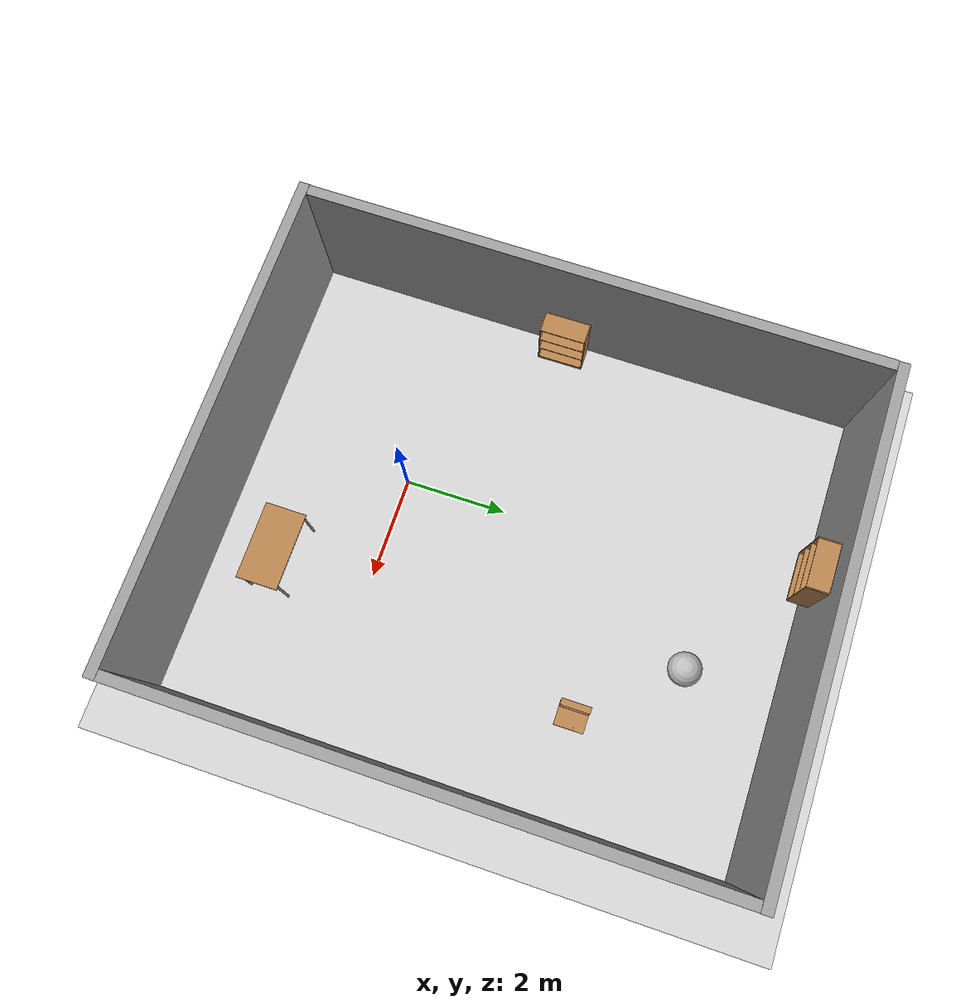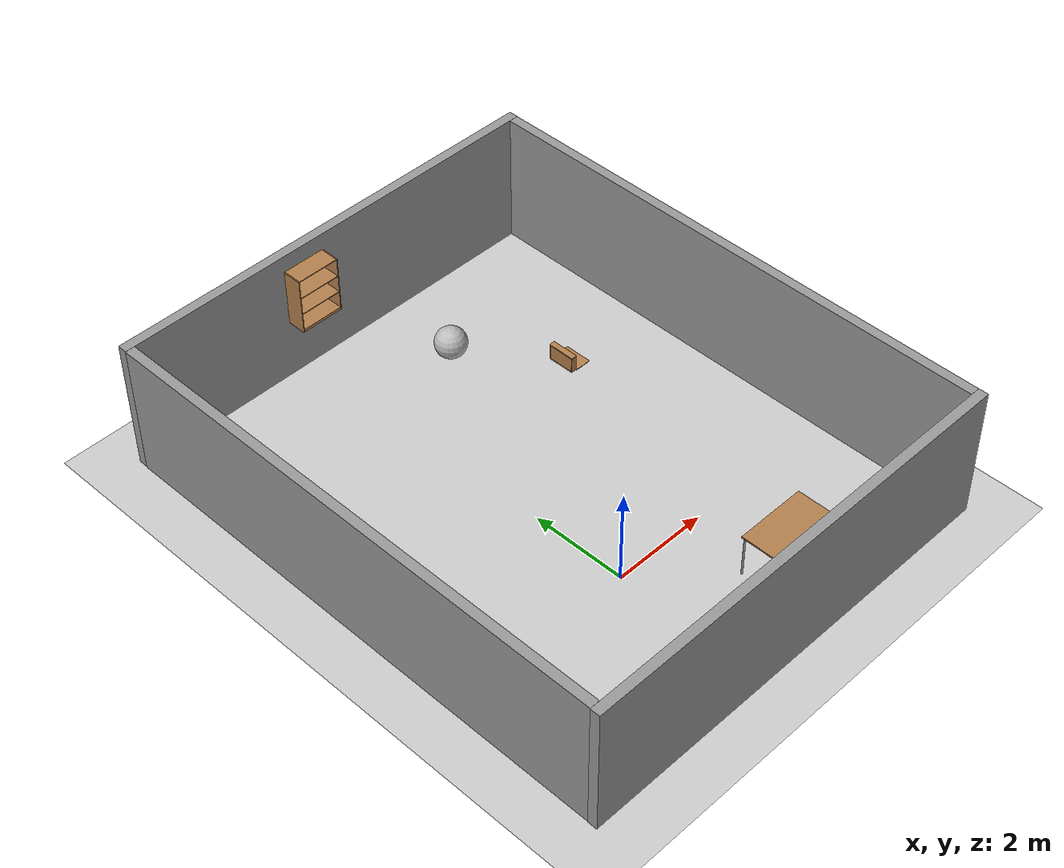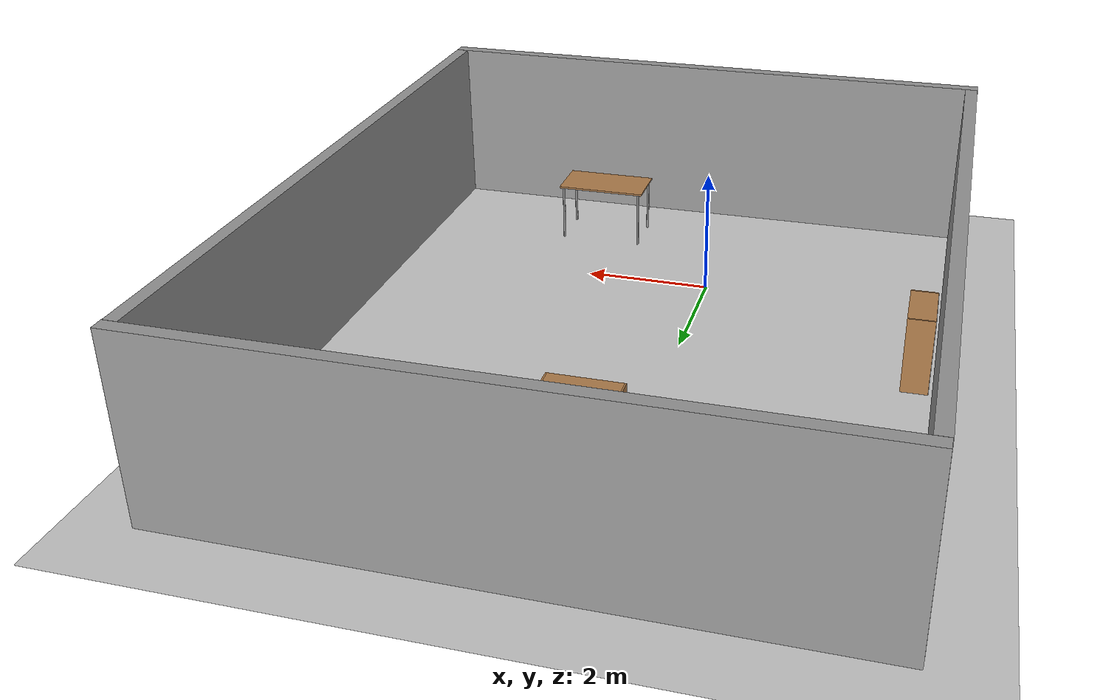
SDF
<sdf version="1.6">
 <world name="default">
  <light name="sun" type="directional">
   <pose>0 0 15 0 -0 0</pose>
   <diffuse>0.8 0.8 0.8 1</diffuse>
   <specular>0.2 0.2 0.2 1</specular>
   <attenuation>
    <range>1000</range>
    <constant>0.9</constant>
    <linear>0.01</linear>
    <quadratic>0.001</quadratic>
   </attenuation>
   <direction>-0.5 0.1 -0.9</direction>
  </light>
  <model name="ground_plane">
   <static>1</static>
   <link name="link">
    <collision name="collision">
     <geometry><plane><normal>0 0 1</normal><size>100 100</size></plane></geometry>
     <surface><friction><ode><mu>100</mu><mu2>50</mu2></ode></friction></surface>
    </collision>
    <visual name="visual">
     <transparency>1</transparency>
     <cast_shadows>0</cast_shadows>
     <geometry><plane><normal>0 0 1</normal><size>100 100</size></plane></geometry>
     <material>
      <script><uri>file://media/materials/scripts/gazebo.material</uri><name>Gazebo/Grey</name></script>
     </material>
    </visual>
   </link>
  </model>
  <gravity>0 0 -9.8</gravity>
  <magnetic_field>6e-06 2.3e-05 -4.2e-05</magnetic_field>
  <atmosphere type="adiabatic"/>
  <physics name="default_physics" default="0" type="ode">
   <max_step_size>0.001</max_step_size>
   <real_time_factor>1</real_time_factor>
   <real_time_update_rate>1000</real_time_update_rate>
  </physics>
  <scene><ambient>0.4 0.4 0.4 1</ambient><background>0.7 0.7 0.7 1</background><shadows>1</shadows></scene>
  <spherical_coordinates>
   <surface_model>EARTH_WGS84</surface_model>
   <latitude_deg>0</latitude_deg>
   <longitude_deg>0</longitude_deg>
   <elevation>0</elevation>
   <heading_deg>0</heading_deg>
  </spherical_coordinates>
  <model name="wooden_case">
   <link name="base">
    <pose>0 0 0.024 0 -0 0</pose>
    <inertial>
     <pose>-0.022184 0 0.171592 0 -0 0</pose>
     <mass>3.96264</mass>
     <inertia>
      <ixx>0.213536</ixx>
      <ixy>0</ixy>
      <ixz>0.000779377</ixz>
      <iyy>0.0708943</iyy>
      <iyz>0</iyz>
      <izz>0.154604</izz>
     </inertia>
    </inertial>
    <collision name="collision_back">
     <pose>-0.053975 0 0.1778 0 -0 0</pose>
     <geometry><box><size>0.01905 0.5461 0.3175</size></box></geometry>
     <surface>
      <contact>
       <poissons_ratio>0.347</poissons_ratio>
       <elastic_modulus>8.8e+09</elastic_modulus>
       <ode><kp>100000</kp><kd>100</kd><max_vel>100</max_vel><min_depth>0.001</min_depth></ode>
      </contact>
      <friction>
       <torsional>
        <coefficient>1</coefficient>
        <use_patch_radius>0</use_patch_radius>
        <surface_radius>0.01</surface_radius>
       </torsional>
      </friction>
     </surface>
    </collision>
    <visual name="visual_back">
     <pose>-0.053975 0 0.1778 0 -0 0</pose>
     <geometry><box><size>0.01905 0.5461 0.3175</size></box></geometry>
     <material>
      <script><uri>file://media/materials/scripts/gazebo.material</uri><name>Gazebo/Wood</name></script>
     </material>
    </visual>
    <collision name="collision_bottom">
     <pose>0 0 0.009525 0 -0 0</pose>
     <geometry><box><size>0.127 0.5842 0.01905</size></box></geometry>
     <surface>
      <contact>
       <poissons_ratio>0.347</poissons_ratio>
       <elastic_modulus>8.8e+09</elastic_modulus>
       <ode><kp>100000</kp><kd>100</kd><max_vel>100</max_vel><min_depth>0.001</min_depth></ode>
      </contact>
      <friction>
       <torsional>
        <coefficient>1</coefficient>
        <use_patch_radius>0</use_patch_radius>
        <surface_radius>0.01</surface_radius>
       </torsional>
      </friction>
     </surface>
    </collision>
    <visual name="visual_bottom">
     <pose>0 0 0.009525 0 -0 0</pose>
     <geometry><box><size>0.127 0.5842 0.01905</size></box></geometry>
     <material>
      <script><uri>file://media/materials/scripts/gazebo.material</uri><name>Gazebo/Wood</name></script>
     </material>
    </visual>
    <collision name="collision_top">
     <pose>0 0 0.346075 0 -0 0</pose>
     <geometry><box><size>0.127 0.5842 0.01905</size></box></geometry>
     <surface>
      <contact>
       <poissons_ratio>0.347</poissons_ratio>
       <elastic_modulus>8.8e+09</elastic_modulus>
       <ode><kp>100000</kp><kd>100</kd><max_vel>100</max_vel><min_depth>0.001</min_depth></ode>
      </contact>
      <friction>
       <torsional>
        <coefficient>1</coefficient>
        <use_patch_radius>0</use_patch_radius>
        <surface_radius>0.01</surface_radius>
       </torsional>
      </friction>
     </surface>
    </collision>
    <visual name="visual_top">
     <pose>0 0 0.346075 0 -0 0</pose>
     <geometry><box><size>0.127 0.5842 0.01905</size></box></geometry>
     <material>
      <script><uri>file://media/materials/scripts/gazebo.material</uri><name>Gazebo/Wood</name></script>
     </material>
    </visual>
    <collision name="collision_left">
     <pose>0 -0.282575 0.1778 0 -0 0</pose>
     <geometry><box><size>0.127 0.01905 0.3175</size></box></geometry>
     <surface>
      <contact>
       <poissons_ratio>0.347</poissons_ratio>
       <elastic_modulus>8.8e+09</elastic_modulus>
       <ode><kp>100000</kp><kd>100</kd><max_vel>100</max_vel><min_depth>0.001</min_depth></ode>
      </contact>
      <friction>
       <torsional>
        <coefficient>1</coefficient>
        <use_patch_radius>0</use_patch_radius>
        <surface_radius>0.01</surface_radius>
       </torsional>
      </friction>
     </surface>
    </collision>
    <visual name="visual_left">
     <pose>0 -0.282575 0.1778 0 -0 0</pose>
     <geometry><box><size>0.127 0.01905 0.3175</size></box></geometry>
     <material>
      <script><uri>file://media/materials/scripts/gazebo.material</uri><name>Gazebo/Wood</name></script>
     </material>
    </visual>
    <collision name="collision_right">
     <pose>0 0.282575 0.1778 0 -0 0</pose>
     <geometry><box><size>0.127 0.01905 0.3175</size></box></geometry>
     <surface>
      <contact>
       <poissons_ratio>0.347</poissons_ratio>
       <elastic_modulus>8.8e+09</elastic_modulus>
       <ode><kp>100000</kp><kd>100</kd><max_vel>100</max_vel><min_depth>0.001</min_depth></ode>
      </contact>
      <friction>
       <torsional>
        <coefficient>1</coefficient>
        <use_patch_radius>0</use_patch_radius>
        <surface_radius>0.01</surface_radius>
       </torsional>
      </friction>
     </surface>
    </collision>
    <visual name="visual_right">
     <pose>0 0.282575 0.1778 0 -0 0</pose>
     <geometry><box><size>0.127 0.01905 0.3175</size></box></geometry>
     <material>
      <script><uri>file://media/materials/scripts/gazebo.material</uri><name>Gazebo/Wood</name></script>
     </material>
    </visual>
    <collision name="collision_block_left">
     <pose>0.0095 -0.2151 -0.012 0 -0 0</pose>
     <geometry><box><size>0.108 0.05 0.024</size></box></geometry>
     <surface>
      <contact>
       <poissons_ratio>0.347</poissons_ratio>
       <elastic_modulus>8.8e+09</elastic_modulus>
       <ode><kp>100000</kp><kd>100</kd><max_vel>100</max_vel><min_depth>0.001</min_depth></ode>
      </contact>
      <friction>
       <torsional>
        <coefficient>1</coefficient>
        <use_patch_radius>0</use_patch_radius>
        <surface_radius>0.01</surface_radius>
       </torsional>
      </friction>
     </surface>
    </collision>
    <visual name="visual_block_left">
     <pose>0.0095 -0.2151 -0.012 0 -0 0</pose>
     <geometry><box><size>0.108 0.05 0.024</size></box></geometry>
     <material>
      <script><uri>file://media/materials/scripts/gazebo.material</uri><name>Gazebo/Wood</name></script>
     </material>
    </visual>
    <collision name="collision_block_right">
     <pose>0.0095 0.2151 -0.012 0 -0 0</pose>
     <geometry><box><size>0.108 0.05 0.024</size></box></geometry>
     <surface>
      <contact>
       <poissons_ratio>0.347</poissons_ratio>
       <elastic_modulus>8.8e+09</elastic_modulus>
       <ode><kp>100000</kp><kd>100</kd><max_vel>100</max_vel><min_depth>0.001</min_depth></ode>
      </contact>
      <friction>
       <torsional>
        <coefficient>1</coefficient>
        <use_patch_radius>0</use_patch_radius>
        <surface_radius>0.01</surface_radius>
       </torsional>
      </friction>
     </surface>
    </collision>
    <visual name="visual_block_right">
     <pose>0.0095 0.2151 -0.012 0 -0 0</pose>
     <geometry><box><size>0.108 0.05 0.024</size></box></geometry>
     <material>
      <script><uri>file://media/materials/scripts/gazebo.material</uri><name>Gazebo/Wood</name></script>
     </material>
    </visual>
   </link>
   <link name="lid">
    <pose>0.243775 0 0.009525 0 -0 0</pose>
    <inertial>
     <mass>1.97874</mass>
     <inertia>
      <ixx>0.0563367</ixx>
      <ixy>0</ixy>
      <ixz>0</ixz>
      <iyy>0.020911</iyy>
      <iyz>0</iyz>
      <izz>0.0771281</izz>
     </inertia>
    </inertial>
    <collision name="collision">
     <geometry><box><size>0.3556 0.5842 0.01905</size></box></geometry>
     <surface>
      <contact>
       <poissons_ratio>0.347</poissons_ratio>
       <elastic_modulus>8.8e+09</elastic_modulus>
       <ode><kp>100000</kp><kd>100</kd><max_vel>100</max_vel><min_depth>0.001</min_depth></ode>
      </contact>
      <friction>
       <torsional>
        <coefficient>1</coefficient>
        <use_patch_radius>0</use_patch_radius>
        <surface_radius>0.01</surface_radius>
       </torsional>
      </friction>
     </surface>
    </collision>
    <visual name="visual">
     <geometry><box><size>0.3556 0.5842 0.01905</size></box></geometry>
     <material>
      <script><uri>file://media/materials/scripts/gazebo.material</uri><name>Gazebo/Wood</name></script>
     </material>
    </visual>
    <visual name="tee_nut_1">
     <pose>0.122 -0.216 0 0 -0 0</pose>
     <geometry><cylinder><radius>0.00635</radius><length>0.0192405</length></cylinder></geometry>
     <material>
      <script><uri>file://media/materials/scripts/gazebo.material</uri><name>Gazebo/Grey</name></script>
     </material>
    </visual>
    <visual name="tee_nut_2">
     <pose>0.122 -0.088 0 0 -0 0</pose>
     <geometry><cylinder><radius>0.00635</radius><length>0.0192405</length></cylinder></geometry>
     <material>
      <script><uri>file://media/materials/scripts/gazebo.material</uri><name>Gazebo/Grey</name></script>
     </material>
    </visual>
    <visual name="tee_nut_3">
     <pose>0.122 0.088 0 0 -0 0</pose>
     <geometry><cylinder><radius>0.00635</radius><length>0.0192405</length></cylinder></geometry>
     <material>
      <script><uri>file://media/materials/scripts/gazebo.material</uri><name>Gazebo/Grey</name></script>
     </material>
    </visual>
    <visual name="tee_nut_4">
     <pose>0.122 0.216 0 0 -0 0</pose>
     <geometry><cylinder><radius>0.00635</radius><length>0.0192405</length></cylinder></geometry>
     <material>
      <script><uri>file://media/materials/scripts/gazebo.material</uri><name>Gazebo/Grey</name></script>
     </material>
    </visual>
   </link>
   <joint name="lid_hinge" type="revolute">
    <pose>-0.1778 0 0.01905 0 -0 0</pose>
    <parent>base</parent>
    <child>lid</child>
    <axis>
     <xyz>0 1 0</xyz>
     <limit><upper>0.523599</upper><lower>-1.5708</lower></limit>
     <use_parent_model_frame>0</use_parent_model_frame>
     <dynamics><spring_reference>0</spring_reference><spring_stiffness>0</spring_stiffness></dynamics>
    </axis>
   </joint>
   <pose>3.18311 4.46322 -0.001057 0 -0.000428 -1e-06</pose>
  </model>
  <model name="table">
   <static>1</static>
   <link name="link">
    <collision name="surface">
     <pose>0 0 1 0 -0 0</pose>
     <geometry><box><size>1.5 0.8 0.03</size></box></geometry>
     <surface><friction><ode><mu>0.6</mu><mu2>0.6</mu2></ode></friction></surface>
    </collision>
    <visual name="visual1">
     <pose>0 0 1 0 -0 0</pose>
     <geometry><box><size>1.5 0.8 0.03</size></box></geometry>
     <material>
      <script><uri>file://media/materials/scripts/gazebo.material</uri><name>Gazebo/Wood</name></script>
     </material>
    </visual>
    <collision name="front_left_leg">
     <pose>0.68 0.38 0.5 0 -0 0</pose>
     <geometry><cylinder><radius>0.02</radius><length>1</length></cylinder></geometry>
    </collision>
    <visual name="front_left_leg">
     <pose>0.68 0.38 0.5 0 -0 0</pose>
     <geometry><cylinder><radius>0.02</radius><length>1</length></cylinder></geometry>
     <material>
      <script><uri>file://media/materials/scripts/gazebo.material</uri><name>Gazebo/Grey</name></script>
     </material>
    </visual>
    <collision name="front_right_leg">
     <pose>0.68 -0.38 0.5 0 -0 0</pose>
     <geometry><cylinder><radius>0.02</radius><length>1</length></cylinder></geometry>
    </collision>
    <visual name="front_right_leg">
     <pose>0.68 -0.38 0.5 0 -0 0</pose>
     <geometry><cylinder><radius>0.02</radius><length>1</length></cylinder></geometry>
     <material>
      <script><uri>file://media/materials/scripts/gazebo.material</uri><name>Gazebo/Grey</name></script>
     </material>
    </visual>
    <collision name="back_right_leg">
     <pose>-0.68 -0.38 0.5 0 -0 0</pose>
     <geometry><cylinder><radius>0.02</radius><length>1</length></cylinder></geometry>
    </collision>
    <visual name="back_right_leg">
     <pose>-0.68 -0.38 0.5 0 -0 0</pose>
     <geometry><cylinder><radius>0.02</radius><length>1</length></cylinder></geometry>
     <material>
      <script><uri>file://media/materials/scripts/gazebo.material</uri><name>Gazebo/Grey</name></script>
     </material>
    </visual>
    <collision name="back_left_leg">
     <pose>-0.68 0.38 0.5 0 -0 0</pose>
     <geometry><cylinder><radius>0.02</radius><length>1</length></cylinder></geometry>
    </collision>
    <visual name="back_left_leg">
     <pose>-0.68 0.38 0.5 0 -0 0</pose>
     <geometry><cylinder><radius>0.02</radius><length>1</length></cylinder></geometry>
     <material>
      <script><uri>file://media/materials/scripts/gazebo.material</uri><name>Gazebo/Grey</name></script>
     </material>
    </visual>
   </link>
   <pose>2.21738 -1.78715 -0.059085 0 -0 0</pose>
  </model>
  <model name="bookshelf">
   <static>1</static>
   <link name="link">
    <inertial><mass>1</mass></inertial>
    <collision name="back">
     <pose>0 0.005 0.6 0 -0 0</pose>
     <geometry><box><size>0.9 0.01 1.2</size></box></geometry>
    </collision>
    <visual name="visual1">
     <pose>0 0.005 0.6 0 -0 0</pose>
     <geometry><box><size>0.9 0.01 1.2</size></box></geometry>
     <material>
      <script><uri>file://media/materials/scripts/gazebo.material</uri><name>Gazebo/Wood</name></script>
     </material>
    </visual>
    <collision name="left_side">
     <pose>0.45 -0.195 0.6 0 -0 0</pose>
     <geometry><box><size>0.02 0.4 1.2</size></box></geometry>
    </collision>
    <visual name="visual2">
     <pose>0.45 -0.195 0.6 0 -0 0</pose>
     <geometry><box><size>0.02 0.4 1.2</size></box></geometry>
     <material>
      <script><uri>file://media/materials/scripts/gazebo.material</uri><name>Gazebo/Wood</name></script>
     </material>
    </visual>
    <collision name="right_side">
     <pose>-0.45 -0.195 0.6 0 -0 0</pose>
     <geometry><box><size>0.02 0.4 1.2</size></box></geometry>
    </collision>
    <visual name="visual3">
     <pose>-0.45 -0.195 0.6 0 -0 0</pose>
     <geometry><box><size>0.02 0.4 1.2</size></box></geometry>
     <material>
      <script><uri>file://media/materials/scripts/gazebo.material</uri><name>Gazebo/Wood</name></script>
     </material>
    </visual>
    <collision name="bottom">
     <pose>0 -0.195 0.03 0 -0 0</pose>
     <geometry><box><size>0.88 0.4 0.06</size></box></geometry>
    </collision>
    <visual name="visual4">
     <pose>0 -0.195 0.03 0 -0 0</pose>
     <geometry><box><size>0.88 0.4 0.06</size></box></geometry>
     <material>
      <script><uri>file://media/materials/scripts/gazebo.material</uri><name>Gazebo/Wood</name></script>
     </material>
    </visual>
    <collision name="top">
     <pose>0 -0.195 1.19 0 -0 0</pose>
     <geometry><box><size>0.88 0.4 0.02</size></box></geometry>
    </collision>
    <visual name="visual5">
     <pose>0 -0.195 1.19 0 -0 0</pose>
     <geometry><box><size>0.88 0.4 0.02</size></box></geometry>
     <material>
      <script><uri>file://media/materials/scripts/gazebo.material</uri><name>Gazebo/Wood</name></script>
     </material>
    </visual>
    <collision name="low_shelf">
     <pose>0 -0.195 0.43 0 -0 0</pose>
     <geometry><box><size>0.88 0.4 0.02</size></box></geometry>
    </collision>
    <visual name="visual6">
     <pose>0 -0.195 0.43 0 -0 0</pose>
     <geometry><box><size>0.88 0.4 0.02</size></box></geometry>
     <material>
      <script><uri>file://media/materials/scripts/gazebo.material</uri><name>Gazebo/Wood</name></script>
     </material>
    </visual>
    <collision name="high_shelf">
     <pose>0 -0.195 0.8 0 -0 0</pose>
     <geometry><box><size>0.88 0.4 0.02</size></box></geometry>
    </collision>
    <visual name="visual7">
     <pose>0 -0.195 0.8 0 -0 0</pose>
     <geometry><box><size>0.88 0.4 0.02</size></box></geometry>
     <material>
      <script><uri>file://media/materials/scripts/gazebo.material</uri><name>Gazebo/Wood</name></script>
     </material>
    </visual>
   </link>
   <pose>-0.128106 7.81472 1.37877 0 -0 0</pose>
  </model>
  <model name="grey_wall_1_0">
   <link name="link">
    <pose>0 0 1.4 0 -0 0</pose>
    <inertial>
     <mass>1</mass>
     <inertia><ixx>1</ixx><ixy>0</ixy><ixz>0</ixz><iyy>1</iyy><iyz>0</iyz><izz>1</izz></inertia>
    </inertial>
    <visual name="visual">
     <cast_shadows>0</cast_shadows>
     <geometry><box><size>9.5 0.2 2.8</size></box></geometry>
     <material>
      <script>
       <uri>model://grey_wall/materials/scripts</uri>
       <uri>model://grey_wall/materials/textures</uri>
       <name>vrc/grey_wall</name>
      </script>
      <ambient>1 1 1 1</ambient>
      <diffuse>1 1 1 1</diffuse>
      <specular>0 0 0 1</specular>
      <emissive>0 0 0 1</emissive>
      <shader type="vertex"><normal_map>__default__</normal_map></shader>
     </material>
    </visual>
    <collision name="collision">
     <geometry><box><size>9.5 0.2 2.8</size></box></geometry>
     <surface>
      <friction>
       <ode><mu>1</mu><mu2>1</mu2><fdir1>0 0 0</fdir1><slip1>0</slip1><slip2>0</slip2></ode>
       <torsional>
        <coefficient>1</coefficient>
        <patch_radius>0</patch_radius>
        <surface_radius>0</surface_radius>
        <use_patch_radius>1</use_patch_radius>
        <ode><slip>0</slip></ode>
       </torsional>
      </friction>
      <bounce><restitution_coefficient>0</restitution_coefficient><threshold>1e+06</threshold></bounce>
      <contact>
       <collide_without_contact>0</collide_without_contact>
       <collide_without_contact_bitmask>1</collide_without_contact_bitmask>
       <collide_bitmask>1</collide_bitmask>
       <ode>
        <soft_cfm>0</soft_cfm>
        <soft_erp>0.2</soft_erp>
        <kp>1e+13</kp>
        <kd>1</kd>
        <max_vel>0.01</max_vel>
        <min_depth>0</min_depth>
       </ode>
       <bullet>
        <split_impulse>1</split_impulse>
        <split_impulse_penetration_threshold>-0.01</split_impulse_penetration_threshold>
        <soft_cfm>0</soft_cfm>
        <soft_erp>0.2</soft_erp>
        <kp>1e+13</kp>
        <kd>1</kd>
       </bullet>
      </contact>
     </surface>
    </collision>
   </link>
   <static>1</static>
   <pose>0.733299 8.04251 0 0 -0 0</pose>
  </model>
  <model name="grey_wall_2">
   <link name="link">
    <pose>0 0 1.4 0 -0 0</pose>
    <inertial>
     <mass>1</mass>
     <inertia><ixx>1</ixx><ixy>0</ixy><ixz>0</ixz><iyy>1</iyy><iyz>0</iyz><izz>1</izz></inertia>
    </inertial>
    <visual name="visual">
     <cast_shadows>0</cast_shadows>
     <geometry><box><size>11 0.2 2.8</size></box></geometry>
     <material>
      <script>
       <uri>model://grey_wall/materials/scripts</uri>
       <uri>model://grey_wall/materials/textures</uri>
       <name>vrc/grey_wall</name>
      </script>
      <ambient>1 1 1 1</ambient>
      <diffuse>1 1 1 1</diffuse>
      <specular>0 0 0 1</specular>
      <emissive>0 0 0 1</emissive>
      <shader type="vertex"><normal_map>__default__</normal_map></shader>
     </material>
    </visual>
    <collision name="collision">
     <geometry><box><size>11 0.2 2.8</size></box></geometry>
     <surface>
      <friction>
       <ode><mu>1</mu><mu2>1</mu2><fdir1>0 0 0</fdir1><slip1>0</slip1><slip2>0</slip2></ode>
       <torsional>
        <coefficient>1</coefficient>
        <patch_radius>0</patch_radius>
        <surface_radius>0</surface_radius>
        <use_patch_radius>1</use_patch_radius>
        <ode><slip>0</slip></ode>
       </torsional>
      </friction>
      <bounce><restitution_coefficient>0</restitution_coefficient><threshold>1e+06</threshold></bounce>
      <contact>
       <collide_without_contact>0</collide_without_contact>
       <collide_without_contact_bitmask>1</collide_without_contact_bitmask>
       <collide_bitmask>1</collide_bitmask>
       <ode>
        <soft_cfm>0</soft_cfm>
        <soft_erp>0.2</soft_erp>
        <kp>1e+13</kp>
        <kd>1</kd>
        <max_vel>0.01</max_vel>
        <min_depth>0</min_depth>
       </ode>
       <bullet>
        <split_impulse>1</split_impulse>
        <split_impulse_penetration_threshold>-0.01</split_impulse_penetration_threshold>
        <soft_cfm>0</soft_cfm>
        <soft_erp>0.2</soft_erp>
        <kp>1e+13</kp>
        <kd>1</kd>
       </bullet>
      </contact>
     </surface>
    </collision>
   </link>
   <static>1</static>
   <pose>5.36566 2.44055 0 0 -0 1.56847</pose>
  </model>
  <model name="grey_wall_1">
   <link name="link">
    <pose>0 0 1.4 0 -0 0</pose>
    <inertial>
     <mass>1</mass>
     <inertia><ixx>1</ixx><ixy>0</ixy><ixz>0</ixz><iyy>1</iyy><iyz>0</iyz><izz>1</izz></inertia>
    </inertial>
    <visual name="visual">
     <cast_shadows>0</cast_shadows>
     <geometry><box><size>9.5 0.2 2.8</size></box></geometry>
     <material>
      <script>
       <uri>model://grey_wall/materials/scripts</uri>
       <uri>model://grey_wall/materials/textures</uri>
       <name>vrc/grey_wall</name>
      </script>
      <ambient>1 1 1 1</ambient>
      <diffuse>1 1 1 1</diffuse>
      <specular>0 0 0 1</specular>
      <emissive>0 0 0 1</emissive>
      <shader type="vertex"><normal_map>__default__</normal_map></shader>
     </material>
    </visual>
    <collision name="collision">
     <geometry><box><size>9.5 0.2 2.8</size></box></geometry>
     <surface>
      <friction>
       <ode><mu>1</mu><mu2>1</mu2><fdir1>0 0 0</fdir1><slip1>0</slip1><slip2>0</slip2></ode>
       <torsional>
        <coefficient>1</coefficient>
        <patch_radius>0</patch_radius>
        <surface_radius>0</surface_radius>
        <use_patch_radius>1</use_patch_radius>
        <ode><slip>0</slip></ode>
       </torsional>
      </friction>
      <bounce><restitution_coefficient>0</restitution_coefficient><threshold>1e+06</threshold></bounce>
      <contact>
       <collide_without_contact>0</collide_without_contact>
       <collide_without_contact_bitmask>1</collide_without_contact_bitmask>
       <collide_bitmask>1</collide_bitmask>
       <ode>
        <soft_cfm>0</soft_cfm>
        <soft_erp>0.2</soft_erp>
        <kp>1e+13</kp>
        <kd>1</kd>
        <max_vel>0.01</max_vel>
        <min_depth>0</min_depth>
       </ode>
       <bullet>
        <split_impulse>1</split_impulse>
        <split_impulse_penetration_threshold>-0.01</split_impulse_penetration_threshold>
        <soft_cfm>0</soft_cfm>
        <soft_erp>0.2</soft_erp>
        <kp>1e+13</kp>
        <kd>1</kd>
       </bullet>
      </contact>
     </surface>
    </collision>
   </link>
   <static>1</static>
   <pose>0.70458 -3.16126 0 0 -0 0</pose>
  </model>
  <model name="grey_wall_2_0">
   <link name="link">
    <pose>0 0 1.4 0 -0 0</pose>
    <inertial>
     <mass>1</mass>
     <inertia><ixx>1</ixx><ixy>0</ixy><ixz>0</ixz><iyy>1</iyy><iyz>0</iyz><izz>1</izz></inertia>
    </inertial>
    <visual name="visual">
     <cast_shadows>0</cast_shadows>
     <geometry><box><size>11 0.2 2.8</size></box></geometry>
     <material>
      <script>
       <uri>model://grey_wall/materials/scripts</uri>
       <uri>model://grey_wall/materials/textures</uri>
       <name>vrc/grey_wall</name>
      </script>
      <ambient>1 1 1 1</ambient>
      <diffuse>1 1 1 1</diffuse>
      <specular>0 0 0 1</specular>
      <emissive>0 0 0 1</emissive>
      <shader type="vertex"><normal_map>__default__</normal_map></shader>
     </material>
    </visual>
    <collision name="collision">
     <geometry><box><size>11 0.2 2.8</size></box></geometry>
     <surface>
      <friction>
       <ode><mu>1</mu><mu2>1</mu2><fdir1>0 0 0</fdir1><slip1>0</slip1><slip2>0</slip2></ode>
       <torsional>
        <coefficient>1</coefficient>
        <patch_radius>0</patch_radius>
        <surface_radius>0</surface_radius>
        <use_patch_radius>1</use_patch_radius>
        <ode><slip>0</slip></ode>
       </torsional>
      </friction>
      <bounce><restitution_coefficient>0</restitution_coefficient><threshold>1e+06</threshold></bounce>
      <contact>
       <collide_without_contact>0</collide_without_contact>
       <collide_without_contact_bitmask>1</collide_without_contact_bitmask>
       <collide_bitmask>1</collide_bitmask>
       <ode>
        <soft_cfm>0</soft_cfm>
        <soft_erp>0.2</soft_erp>
        <kp>1e+13</kp>
        <kd>1</kd>
        <max_vel>0.01</max_vel>
        <min_depth>0</min_depth>
       </ode>
       <bullet>
        <split_impulse>1</split_impulse>
        <split_impulse_penetration_threshold>-0.01</split_impulse_penetration_threshold>
        <soft_cfm>0</soft_cfm>
        <soft_erp>0.2</soft_erp>
        <kp>1e+13</kp>
        <kd>1</kd>
       </bullet>
      </contact>
     </surface>
    </collision>
   </link>
   <static>1</static>
   <pose>-3.93174 2.44062 0 0 -0 1.56974</pose>
  </model>
  <model name="bookshelf_0">
   <static>1</static>
   <link name="link">
    <inertial><mass>1</mass></inertial>
    <collision name="back">
     <pose>0 0.005 0.6 0 -0 0</pose>
     <geometry><box><size>0.9 0.01 1.2</size></box></geometry>
    </collision>
    <visual name="visual1">
     <pose>0 0.005 0.6 0 -0 0</pose>
     <geometry><box><size>0.9 0.01 1.2</size></box></geometry>
     <material>
      <script><uri>file://media/materials/scripts/gazebo.material</uri><name>Gazebo/Wood</name></script>
     </material>
    </visual>
    <collision name="left_side">
     <pose>0.45 -0.195 0.6 0 -0 0</pose>
     <geometry><box><size>0.02 0.4 1.2</size></box></geometry>
    </collision>
    <visual name="visual2">
     <pose>0.45 -0.195 0.6 0 -0 0</pose>
     <geometry><box><size>0.02 0.4 1.2</size></box></geometry>
     <material>
      <script><uri>file://media/materials/scripts/gazebo.material</uri><name>Gazebo/Wood</name></script>
     </material>
    </visual>
    <collision name="right_side">
     <pose>-0.45 -0.195 0.6 0 -0 0</pose>
     <geometry><box><size>0.02 0.4 1.2</size></box></geometry>
    </collision>
    <visual name="visual3">
     <pose>-0.45 -0.195 0.6 0 -0 0</pose>
     <geometry><box><size>0.02 0.4 1.2</size></box></geometry>
     <material>
      <script><uri>file://media/materials/scripts/gazebo.material</uri><name>Gazebo/Wood</name></script>
     </material>
    </visual>
    <collision name="bottom">
     <pose>0 -0.195 0.03 0 -0 0</pose>
     <geometry><box><size>0.88 0.4 0.06</size></box></geometry>
    </collision>
    <visual name="visual4">
     <pose>0 -0.195 0.03 0 -0 0</pose>
     <geometry><box><size>0.88 0.4 0.06</size></box></geometry>
     <material>
      <script><uri>file://media/materials/scripts/gazebo.material</uri><name>Gazebo/Wood</name></script>
     </material>
    </visual>
    <collision name="top">
     <pose>0 -0.195 1.19 0 -0 0</pose>
     <geometry><box><size>0.88 0.4 0.02</size></box></geometry>
    </collision>
    <visual name="visual5">
     <pose>0 -0.195 1.19 0 -0 0</pose>
     <geometry><box><size>0.88 0.4 0.02</size></box></geometry>
     <material>
      <script><uri>file://media/materials/scripts/gazebo.material</uri><name>Gazebo/Wood</name></script>
     </material>
    </visual>
    <collision name="low_shelf">
     <pose>0 -0.195 0.43 0 -0 0</pose>
     <geometry><box><size>0.88 0.4 0.02</size></box></geometry>
    </collision>
    <visual name="visual6">
     <pose>0 -0.195 0.43 0 -0 0</pose>
     <geometry><box><size>0.88 0.4 0.02</size></box></geometry>
     <material>
      <script><uri>file://media/materials/scripts/gazebo.material</uri><name>Gazebo/Wood</name></script>
     </material>
    </visual>
    <collision name="high_shelf">
     <pose>0 -0.195 0.8 0 -0 0</pose>
     <geometry><box><size>0.88 0.4 0.02</size></box></geometry>
    </collision>
    <visual name="visual7">
     <pose>0 -0.195 0.8 0 -0 0</pose>
     <geometry><box><size>0.88 0.4 0.02</size></box></geometry>
     <material>
      <script><uri>file://media/materials/scripts/gazebo.material</uri><name>Gazebo/Wood</name></script>
     </material>
    </visual>
   </link>
   <pose>-3.76493 2.07178 0 0 -0 1.57872</pose>
  </model>
  <model name="frc2016_ball_1">
   <link name="link">
    <inertial>
     <mass>0.213</mass>
     <inertia>
      <ixx>0.00322667</ixx>
      <ixy>0</ixy>
      <ixz>0</ixz>
      <iyy>0.00322667</iyy>
      <iyz>0</iyz>
      <izz>0.00322667</izz>
     </inertia>
    </inertial>
    <gravity>0</gravity>
    <visual name="visual">
     <geometry><sphere><radius>0.327</radius></sphere></geometry>
     <material><shader type="vertex"><normal_map>__default__</normal_map></shader></material>
    </visual>
    <collision name="collision">
     <geometry><sphere><radius>0.327</radius></sphere></geometry>
     <surface>
      <friction>
       <ode><mu>1</mu><mu2>1</mu2><fdir1>0 0 0</fdir1><slip1>0</slip1><slip2>0</slip2></ode>
       <torsional>
        <coefficient>1</coefficient>
        <patch_radius>0</patch_radius>
        <surface_radius>0</surface_radius>
        <use_patch_radius>1</use_patch_radius>
        <ode><slip>0</slip></ode>
       </torsional>
      </friction>
      <bounce><restitution_coefficient>0.15937</restitution_coefficient><threshold>0</threshold></bounce>
      <contact>
       <collide_without_contact>0</collide_without_contact>
       <collide_without_contact_bitmask>1</collide_without_contact_bitmask>
       <collide_bitmask>1</collide_bitmask>
       <ode>
        <soft_cfm>0</soft_cfm>
        <soft_erp>0.2</soft_erp>
        <kp>1e+13</kp>
        <kd>1</kd>
        <max_vel>100</max_vel>
        <min_depth>0.001</min_depth>
       </ode>
       <bullet>
        <split_impulse>1</split_impulse>
        <split_impulse_penetration_threshold>-0.01</split_impulse_penetration_threshold>
        <soft_cfm>0</soft_cfm>
        <soft_erp>0.2</soft_erp>
        <kp>1e+13</kp>
        <kd>1</kd>
       </bullet>
      </contact>
     </surface>
    </collision>
   </link>
   <static>0</static>
   <pose>1.89866 6.17915 0.326422 0 -0 0</pose>
  </model>
 </world>
</sdf>
